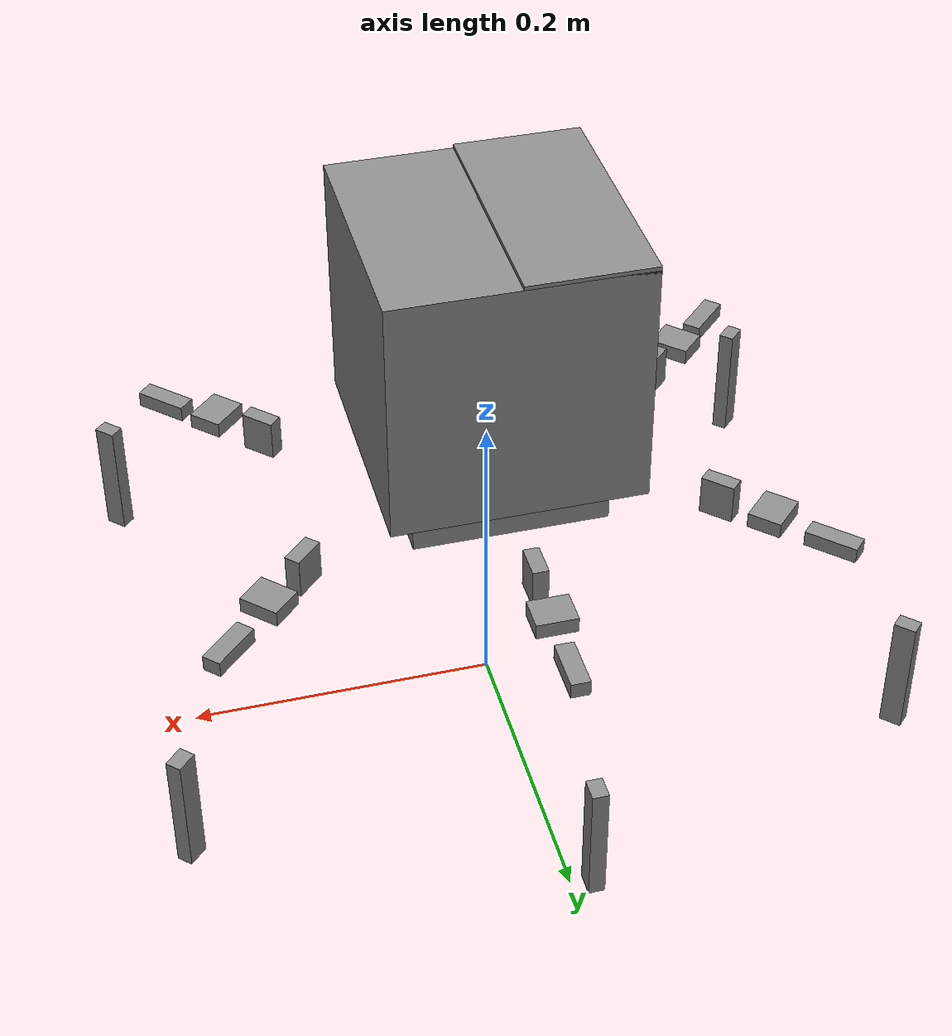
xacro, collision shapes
<?xml version="1.0" ?>
<robot name="PhantomX"  xmlns:xacro="http://www.ros.org/wiki/xacro">

  <xacro:include filename="./phantomx_urdf.xacro" />

  <!-- Ground projection (z=0, on the floor) -->
  <link name="base_footprint"/>

  <!-- Body base frame, raised to robot body height above ground -->
  <joint name="j_base_footprint_to_base_link" type="fixed">
    <parent link="base_footprint"/>
    <child link="base_link"/>
    <origin xyz="0 0 0.174" rpy="0 0 0" />
  </joint>
  <link name="base_link"/>

    <xacro:phantomx parent="base_link">
        <origin xyz="0 0 0" rpy="0 0 0" />
    </xacro:phantomx>

  <!-- Wheel assembly -->

  <!-- Box container on chassis -->
  <xacro:include filename="./box.xacro" />

</robot>

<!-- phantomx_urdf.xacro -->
<robot xmlns:xacro="http://www.ros.org/wiki/xacro">

<!-- ========== Collision box half-extents (meters) ========== -->
<xacro:property name="body_box_x" value="0.062" />
<xacro:property name="body_box_y" value="0.059" />
<xacro:property name="body_box_z" value="0.008" />

<xacro:property name="coxa_box_x" value="0.013" />
<xacro:property name="coxa_box_y" value="0.011" />
<xacro:property name="coxa_box_z" value="0.005" />

<xacro:property name="femur_box_x" value="0.006" />
<xacro:property name="femur_box_y" value="0.017" />
<xacro:property name="femur_box_z" value="0.005" />

<xacro:property name="tibia_box_x" value="0.005" />
<xacro:property name="tibia_box_y" value="0.040" />
<xacro:property name="tibia_box_z" value="0.007" />

<!-- ========== Collision box center offsets in link frame (meters) ========== -->
<!-- Body - STL center at (-0.2, 0.1, -0.6)mm ≈ (0, 0, 0) -->
<xacro:property name="body_col_ox" value="0.0" />
<xacro:property name="body_col_oy" value="0.0" />
<xacro:property name="body_col_oz" value="0.0" />

<!-- Coxa/Connect - STL center at (0.1, 16.1, -0.1)mm in STL coords
     Visual origin at (0, -0.0252, 0) maps STL→link frame
     Link-frame center ≈ (0, -0.009, 0) -->
<xacro:property name="coxa_col_ox" value="0.0" />
<xacro:property name="coxa_col_oy" value="-0.0091" />
<xacro:property name="coxa_col_oz" value="0.0" />

<!-- Femur/Thigh - STL center at (1.1, -32.0, -4.8)mm ≈ (0, -0.032, -0.005)m -->
<xacro:property name="femur_col_ox" value="0.0" />
<xacro:property name="femur_col_oy" value="-0.0320" />
<xacro:property name="femur_col_oz" value="-0.0048" />

<!-- Tibia/Foot - STL center at (-0.9, 72.9, 21.0)mm ≈ (0, 0.073, 0.021)m -->
<xacro:property name="tibia_col_ox" value="0.0" />
<xacro:property name="tibia_col_oy" value="0.0729" />
<xacro:property name="tibia_col_oz" value="0.0210" />

<!-- ========== Joint link offsets (keep original) ========== -->
<xacro:property name="connect_offset" value="0.02633" />
<xacro:property name="thigh_offset_y" value="-0.0645" />
<xacro:property name="thigh_offset_z" value="-0.0145" />

<xacro:macro name="phantomx" params="parent *origin">

  <joint name="j_phantomx_attachment" type="fixed">
    <parent link="${parent}"/>
    <child link="MP_BODY"/>
    <insert_block name="origin" />
  </joint>

  <link name="MP_BODY">
    <inertial>
      <origin xyz="${body_col_ox} ${body_col_oy} ${body_col_oz}" rpy="0 0 0" />
      <mass value="0.976" />
      <!-- Box inertia - m/12 * diag(dy²+dz², dx²+dz², dx²+dy²) -->
      <inertia ixx="0.004471" ixy="0.0" ixz="0.0"
               iyy="0.006252" iyz="0.0"
               izz="0.010386" />
    </inertial>
    <visual>
      <origin xyz="0 0 0" rpy="0 0 0" />
      <geometry>
        <mesh filename="file://$(find cubot_description)/cubot_urdf/meshes/body.STL" scale="1 1 1"/>
      </geometry>
      <material name="Grey">
        <color rgba="0.55 0.55 0.55 1.0"/>
      </material>
    </visual>
    <collision>
      <origin xyz="${body_col_ox} ${body_col_oy} ${body_col_oz}" rpy="0 0 0" />
      <geometry>
        <box size="${body_box_x*2} ${body_box_y*2} ${body_box_z*2}" />
      </geometry>
    </collision>
  </link>

  <!-- ===== 6 LEGS ===== -->
  <!-- Right side -->
  <xacro:leg xyz="0.1248 -0.06164  0.001116"  rpy="0 4.7123 0.7853981633974483" suffix="rf"/>
  <xacro:leg xyz="0 -0.1034  0.001116"  rpy="0 4.7123 0" suffix="rm"/>
  <xacro:leg xyz="-0.1248 -0.06164  0.001116"  rpy="0 4.7123 -0.7853981633974483" suffix="rr"/>

  <!-- Left side -->
  <xacro:leg xyz="0.1248 0.06164  0.001116"  rpy="0 4.7123 2.356194490192345" suffix="lf"/>
  <xacro:leg xyz="0 0.1034  0.001116"  rpy="0 4.7123 3.14159" suffix="lm"/>
  <xacro:leg xyz="-0.1248 0.06164  0.001116"  rpy="0 4.7123 3.9269908169872414" suffix="lr"/>

</xacro:macro>

<!-- ===== SINGLE LEG MACRO =====
     Each leg - c1 (coxa) → c2 (coxa extender) → thigh (femur) → tibia (foot)
     3 revolute joints (all rotate around local X axis) + 1 fixed joint (c1→c2) -->
<xacro:macro name="leg" params="xyz rpy suffix">

  <!-- ===== c1 - Coxa bracket =====
       Box - 49.4 × 43.2 × 22.5 mm, mass 30g
       I = m/12 * diag(dy²+dz², dx²+dz², dx²+dy²) -->
  <link name="c1_${suffix}">
    <inertial>
      <origin xyz="${coxa_col_ox} ${coxa_col_oy} ${coxa_col_oz}" rpy="0 0 0" />
      <mass value="0.030" />
      <inertia ixx="0.00000593" ixy="0.0" ixz="0.0"
               iyy="0.00000737" iyz="0.0"
               izz="0.00001077" />
    </inertial>
    <visual>
      <origin xyz="0 -0.0252 0" rpy="0 0 0" />
      <geometry>
        <mesh filename="file://$(find cubot_description)/cubot_urdf/meshes/connect.STL" scale="1 1 1"/>
      </geometry>
      <material name="Grey">
        <color rgba="0.55 0.55 0.55 1.0"/>
      </material>
    </visual>
    <collision>
      <origin xyz="${coxa_col_ox} ${coxa_col_oy} ${coxa_col_oz}" rpy="0 0 0" />
      <geometry>
        <box size="${coxa_box_x*2} ${coxa_box_y*2} ${coxa_box_z*2}" />
      </geometry>
    </collision>
  </link>

  <!-- ===== c2 - Coxa extender (fixed to c1) =====
       Same geometry and mass as c1 -->
  <link name="c2_${suffix}">
    <inertial>
      <origin xyz="${coxa_col_ox} ${coxa_col_oy} ${coxa_col_oz}" rpy="0 0 0" />
      <mass value="0.030" />
      <inertia ixx="0.00000593" ixy="0.0" ixz="0.0"
               iyy="0.00000737" iyz="0.0"
               izz="0.00001077" />
    </inertial>
    <visual>
      <origin xyz="0 -0.0252 0" rpy="0 0 0" />
      <geometry>
        <mesh filename="file://$(find cubot_description)/cubot_urdf/meshes/connect.STL" scale="1 1 1"/>
      </geometry>
      <material name="Grey">
        <color rgba="0.55 0.55 0.55 1.0"/>
      </material>
    </visual>
    <collision>
      <origin xyz="${coxa_col_ox} ${coxa_col_oy} ${coxa_col_oz}" rpy="0 0 0" />
      <geometry>
        <box size="${coxa_box_x*2} ${coxa_box_y*2} ${coxa_box_z*2}" />
      </geometry>
    </collision>
  </link>

  <!-- ===== Thigh / Femur =====
       Box - 50.9 × 87.0 × 41.5 mm, mass 80g
       I = m/12 * diag(dy²+dz², dx²+dz², dx²+dy²) -->
  <link name="thigh_${suffix}">
    <inertial>
      <origin xyz="${femur_col_ox} ${femur_col_oy} ${femur_col_oz}" rpy="0 0 0" />
      <mass value="0.080" />
      <inertia ixx="0.00006194" ixy="0.0" ixz="0.0"
               iyy="0.00002875" iyz="0.0"
               izz="0.00006773" />
    </inertial>
    <visual>
      <origin xyz="0 0 0" rpy="0 0 0" />
      <geometry>
        <mesh filename="file://$(find cubot_description)/cubot_urdf/meshes/thigh_l.STL" scale="1 1 1"/>
      </geometry>
      <material name="Grey">
        <color rgba="0.55 0.55 0.55 1.0"/>
      </material>
    </visual>
    <collision>
      <origin xyz="${femur_col_ox} ${femur_col_oy} ${femur_col_oz}" rpy="0 0 0" />
      <geometry>
        <box size="${femur_box_x*2} ${femur_box_y*2} ${femur_box_z*2}" />
      </geometry>
    </collision>
  </link>

  <!-- ===== Tibia / Foot =====
       Box - 48.0 × 175.4 × 70.6 mm, mass 100g
       I = m/12 * diag(dy²+dz², dx²+dz², dx²+dy²) -->
  <link name="tibia_${suffix}">
    <inertial>
      <origin xyz="${tibia_col_ox} ${tibia_col_oy} ${tibia_col_oz}" rpy="0 0 0" />
      <mass value="0.100" />
      <inertia ixx="0.00029791" ixy="0.0" ixz="0.0"
               iyy="0.00006074" iyz="0.0"
               izz="0.00027558" />
    </inertial>
    <visual>
      <origin xyz="0 0 0" rpy="0 0 0" />
      <geometry>
        <mesh filename="file://$(find cubot_description)/cubot_urdf/meshes/tibia_l.STL" scale="1 1 1"/>
      </geometry>
      <material name="Grey">
        <color rgba="0.55 0.55 0.55 1.0"/>
      </material>
    </visual>
    <collision>
      <origin xyz="${tibia_col_ox} ${tibia_col_oy} ${tibia_col_oz}" rpy="0 0 0" />
      <geometry>
        <box size="${tibia_box_x*2} ${tibia_box_y*2} ${tibia_box_z*2}" />
      </geometry>
    </collision>
  </link>

  <!-- ===== JOINTS ===== -->
  <!-- j_c1 - body → coxa (revolute around X) -->
  <joint name="j_c1_${suffix}" type="revolute">
    <parent link="MP_BODY"/>
    <child link="c1_${suffix}"/>
    <origin xyz="${xyz}" rpy="${rpy}" />
    <axis xyz="1 0 0" />
    <limit effort="2.8" velocity="5.6548668" lower="-2.6179939" upper="2.6179939" />
        <dynamics damping="0.5" friction="0.1" />
  </joint>

  <!-- j_c2 - c1 → c2 (fixed, 54mm offset along -Y) -->
  <joint name="j_c2_${suffix}" type="fixed">
    <parent link="c1_${suffix}"/>
    <child link="c2_${suffix}"/>
    <origin xyz="0 -0.054 0" rpy="0 1.5704 3.14159" />
  </joint>

  <!-- j_thigh - c2 → thigh (revolute around X, knee joint) -->
  <joint name="j_thigh_${suffix}" type="revolute">
    <parent link="c2_${suffix}"/>
    <child link="thigh_${suffix}"/>
    <origin xyz="0 0 0" rpy="0 3.14159 3.14159" />
    <axis xyz="1 0 0" />
    <limit effort="2.8" velocity="5.6548668" lower="-2.6179939" upper="2.6179939" />
        <dynamics damping="0.5" friction="0.1" />
  </joint>

  <!-- j_tibia - thigh → tibia (revolute around X, ankle joint) -->
  <joint name="j_tibia_${suffix}" type="revolute">
    <parent link="thigh_${suffix}"/>
    <child link="tibia_${suffix}"/>
    <origin xyz="0 ${thigh_offset_y} ${thigh_offset_z}" rpy="-1.5707 0 3.14159" />
    <axis xyz="1 0 0" />
    <limit effort="2.8" velocity="5.6548668" lower="-2.6179939" upper="2.6179939" />
        <dynamics damping="0.5" friction="0.1" />
  </joint>

</xacro:macro>

</robot>

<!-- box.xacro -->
<robot xmlns:xacro="http://www.ros.org/wiki/xacro">

<xacro:property name="box_side" value="0.160" />
<xacro:property name="box_height" value="${box_side}" />
<xacro:property name="wall_t" value="0.005" />
<xacro:property name="half" value="${box_side/2}" />
<xacro:property name="half_h" value="${box_height/2}" />
<xacro:property name="inner" value="${half - wall_t}" />

<!-- Box center Z = chassis top + half height -->
<xacro:property name="box_center_z" value="${0.0228 + half_h}" />

<!-- ===== Box container - 5 walls (no top, open) ===== -->
<link name="box_container">
  <inertial>
    <origin xyz="0 0 0" rpy="0 0 0" />
    <mass value="0.850" />
    <inertia ixx="0.0033" ixy="0.0" ixz="0.0"
             iyy="0.0033" iyz="0.0"
             izz="0.0046" />
  </inertial>
  <!-- Bottom -->
  <visual>
    <origin xyz="0 0 ${-half_h + wall_t/2}" rpy="0 0 0" />
    <geometry><box size="${box_side} ${box_side} ${wall_t}" /></geometry>
    <material name="BoxGray"><color rgba="0.55 0.55 0.55 1.0"/></material>
  </visual>
  <!-- Front wall (+X) -->
  <visual>
    <origin xyz="${inner} 0 0" rpy="0 0 0" />
    <geometry><box size="${wall_t} ${box_side} ${box_height}" /></geometry>
    <material name="BoxGray"><color rgba="0.55 0.55 0.55 1.0"/></material>
  </visual>
  <!-- Back wall (-X) -->
  <visual>
    <origin xyz="${-inner} 0 0" rpy="0 0 0" />
    <geometry><box size="${wall_t} ${box_side} ${box_height}" /></geometry>
    <material name="BoxGray"><color rgba="0.55 0.55 0.55 1.0"/></material>
  </visual>
  <!-- Left wall (+Y) -->
  <visual>
    <origin xyz="0 ${inner} 0" rpy="0 0 0" />
    <geometry><box size="${box_side} ${wall_t} ${box_height}" /></geometry>
    <material name="BoxGray"><color rgba="0.55 0.55 0.55 1.0"/></material>
  </visual>
  <!-- Right wall (-Y) -->
  <visual>
    <origin xyz="0 ${-inner} 0" rpy="0 0 0" />
    <geometry><box size="${box_side} ${wall_t} ${box_height}" /></geometry>
    <material name="BoxGray"><color rgba="0.55 0.55 0.55 1.0"/></material>
  </visual>
  <collision>
    <origin xyz="0 0 0" rpy="0 0 0" />
    <geometry><box size="${box_side} ${box_side} ${box_height}" /></geometry>
  </collision>
</link>

<joint name="j_box_container" type="fixed">
  <parent link="base_link"/>
  <child link="box_container"/>
  <origin xyz="0 0 ${box_center_z}" rpy="0 0 0" />
</joint>

<!-- ===== Rear lid - fixed on top of box ===== -->
<link name="lid_rear">
  <inertial>
    <origin xyz="0 0 0" rpy="0 0 0" />
    <mass value="0.120" />
    <inertia ixx="0.00052" ixy="0.0" ixz="0.0"
             iyy="0.00013" iyz="0.0"
             izz="0.00065" />
  </inertial>
  <visual>
    <origin xyz="0 0 0" rpy="0 0 0" />
    <geometry><box size="${half} ${box_side} ${wall_t}" /></geometry>
    <material name="LidColor"><color rgba="0.55 0.55 0.55 1.0"/></material>
  </visual>
  <collision>
    <origin xyz="0 0 0" rpy="0 0 0" />
    <geometry><box size="${half} ${box_side} ${wall_t}" /></geometry>
  </collision>
</link>

<joint name="j_lid_rear" type="fixed">
  <parent link="box_container"/>
  <child link="lid_rear"/>
  <origin xyz="${-half/2} 0 ${half_h}" rpy="0 0 0" />
</joint>

<!-- ===== Front lid - slides backward under rear lid to open ===== -->
<!-- Y = box_side - 2*wall_t (fits inside walls) -->
<!-- X = half - wall_t (slightly shorter) -->
<!-- Z lowered by wall_t (sits below fixed lid, can slide under it) -->
<xacro:property name="sliding_lid_y" value="${box_side - 2*wall_t}" />
<xacro:property name="sliding_lid_x" value="${half - wall_t}" />

<link name="lid_front">
  <inertial>
    <origin xyz="0 0 0" rpy="0 0 0" />
    <mass value="0.100" />
    <inertia ixx="0.00038" ixy="0.0" ixz="0.0"
             iyy="0.00008" iyz="0.0"
             izz="0.00045" />
  </inertial>
  <visual>
    <origin xyz="0 0 0" rpy="0 0 0" />
    <geometry><box size="${sliding_lid_x} ${sliding_lid_y} ${wall_t}" /></geometry>
    <material name="LidColor"><color rgba="0.55 0.55 0.55 1.0"/></material>
  </visual>
  <collision>
    <origin xyz="0 0 0" rpy="0 0 0" />
    <geometry><box size="${sliding_lid_x} ${sliding_lid_y} ${wall_t}" /></geometry>
  </collision>
</link>

<!-- Prismatic along -X - closed at front, slides backward under rear lid -->
<joint name="j_lid_front" type="prismatic">
  <parent link="box_container"/>
  <child link="lid_front"/>
  <origin xyz="${half/2} 0 ${half_h - wall_t}" rpy="0 0 0" />
  <axis xyz="-1 0 0" />
  <limit effort="10.0" velocity="0.5" lower="0" upper="${half}" />
  <dynamics damping="0.5" friction="0.1" />
</joint>

</robot>
